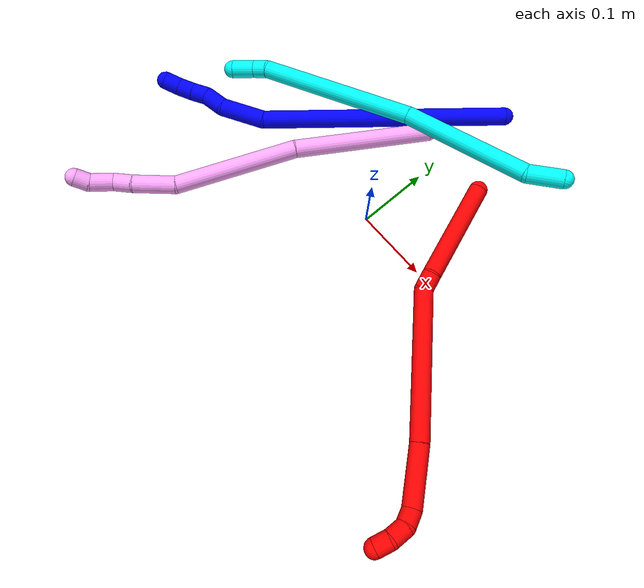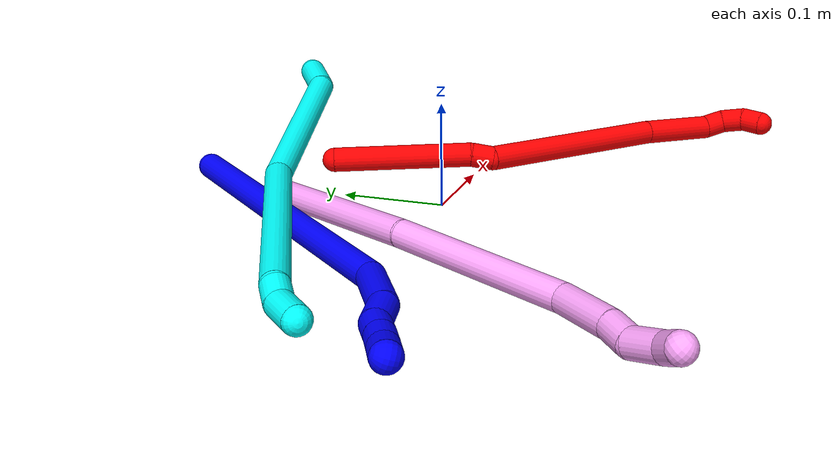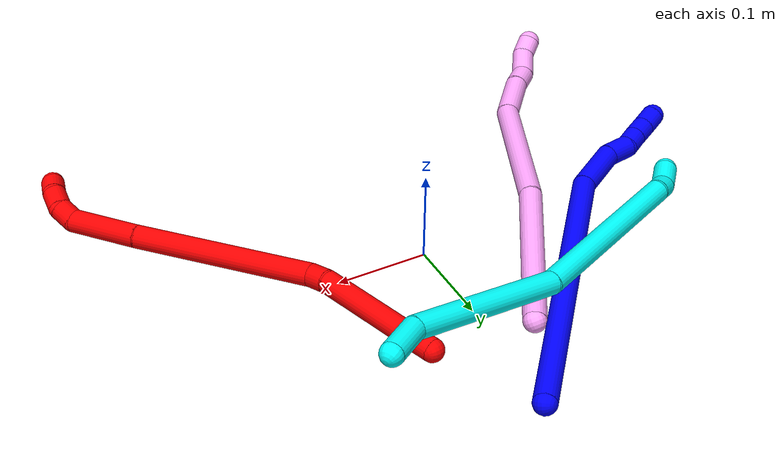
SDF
<sdf version="1.7">
 <world name="default">
  <model name="1">
   <static>0</static>
   <link name="1">
    <collision name="collision-cylinder-e_1_1_4">
     <pose>-0.141002 -0.074557 -0.063639 2.27736 -0.963302 -1.6957</pose>
     <geometry><cylinder><radius>0.0125</radius><length>0.343454</length></cylinder></geometry>
     <surface>
      <friction><ode><mu>1.16</mu><mu2>1.16</mu2><slip1>0</slip1><slip2>0</slip2></ode></friction>
      <contact><ode><kp>1e+06</kp><kd>1</kd><max_vel>0</max_vel><min_depth>0.001</min_depth></ode></contact>
     </surface>
    </collision>
    <visual name="visual-cylinder-e_1_1_4">
     <pose>-0.141002 -0.074557 -0.063639 2.27736 -0.963302 -1.6957</pose>
     <geometry><cylinder><radius>0.0125</radius><length>0.343454</length></cylinder></geometry>
     <material><ambient>0 0 1 1</ambient></material>
    </visual>
    <collision name="collision-cylinder-e_2_4_5">
     <pose>-0.310471 -0.160739 -0.128924 1.71139 -1.17959 -1.31317</pose>
     <geometry><cylinder><radius>0.0125</radius><length>0.061588</length></cylinder></geometry>
     <surface>
      <friction><ode><mu>1.16</mu><mu2>1.16</mu2><slip1>0</slip1><slip2>0</slip2></ode></friction>
      <contact><ode><kp>1e+06</kp><kd>1</kd><max_vel>0</max_vel><min_depth>0.001</min_depth></ode></contact>
     </surface>
    </collision>
    <visual name="visual-cylinder-e_2_4_5">
     <pose>-0.310471 -0.160739 -0.128924 1.71139 -1.17959 -1.31317</pose>
     <geometry><cylinder><radius>0.0125</radius><length>0.061588</length></cylinder></geometry>
     <material><ambient>0 0 1 1</ambient></material>
    </visual>
    <collision name="collision-cylinder-e_3_5_6">
     <pose>-0.353139 -0.175357 -0.126613 0.647427 -1.23471 -0.467666</pose>
     <geometry><cylinder><radius>0.0125</radius><length>0.030085</length></cylinder></geometry>
     <surface>
      <friction><ode><mu>1.16</mu><mu2>1.16</mu2><slip1>0</slip1><slip2>0</slip2></ode></friction>
      <contact><ode><kp>1e+06</kp><kd>1</kd><max_vel>0</max_vel><min_depth>0.001</min_depth></ode></contact>
     </surface>
    </collision>
    <visual name="visual-cylinder-e_3_5_6">
     <pose>-0.353139 -0.175357 -0.126613 0.647427 -1.23471 -0.467666</pose>
     <geometry><cylinder><radius>0.0125</radius><length>0.030085</length></cylinder></geometry>
     <material><ambient>0 0 1 1</ambient></material>
    </visual>
    <collision name="collision-cylinder-e_4_6_7">
     <pose>-0.377139 -0.18239 -0.123275 1.72293 -1.17558 -1.32026</pose>
     <geometry><cylinder><radius>0.0125</radius><length>0.021235</length></cylinder></geometry>
     <surface>
      <friction><ode><mu>1.16</mu><mu2>1.16</mu2><slip1>0</slip1><slip2>0</slip2></ode></friction>
      <contact><ode><kp>1e+06</kp><kd>1</kd><max_vel>0</max_vel><min_depth>0.001</min_depth></ode></contact>
     </surface>
    </collision>
    <visual name="visual-cylinder-e_4_6_7">
     <pose>-0.377139 -0.18239 -0.123275 1.72293 -1.17558 -1.32026</pose>
     <geometry><cylinder><radius>0.0125</radius><length>0.021235</length></cylinder></geometry>
     <material><ambient>0 0 1 1</ambient></material>
    </visual>
    <collision name="collision-cylinder-e_5_7_8">
     <pose>-0.396809 -0.190588 -0.123901 1.57237 -1.17216 -1.17362</pose>
     <geometry><cylinder><radius>0.0125</radius><length>0.02142</length></cylinder></geometry>
     <surface>
      <friction><ode><mu>1.16</mu><mu2>1.16</mu2><slip1>0</slip1><slip2>0</slip2></ode></friction>
      <contact><ode><kp>1e+06</kp><kd>1</kd><max_vel>0</max_vel><min_depth>0.001</min_depth></ode></contact>
     </surface>
    </collision>
    <visual name="visual-cylinder-e_5_7_8">
     <pose>-0.396809 -0.190588 -0.123901 1.57237 -1.17216 -1.17362</pose>
     <geometry><cylinder><radius>0.0125</radius><length>0.02142</length></cylinder></geometry>
     <material><ambient>0 0 1 1</ambient></material>
    </visual>
    <collision name="collision-cylinder-e_6_8_2">
     <pose>-0.416506 -0.199879 -0.123212 1.43602 -1.08563 -0.970006</pose>
     <geometry><cylinder><radius>0.0125</radius><length>0.022218</length></cylinder></geometry>
     <surface>
      <friction><ode><mu>1.16</mu><mu2>1.16</mu2><slip1>0</slip1><slip2>0</slip2></ode></friction>
      <contact><ode><kp>1e+06</kp><kd>1</kd><max_vel>0</max_vel><min_depth>0.001</min_depth></ode></contact>
     </surface>
    </collision>
    <visual name="visual-cylinder-e_6_8_2">
     <pose>-0.416506 -0.199879 -0.123212 1.43602 -1.08563 -0.970006</pose>
     <geometry><cylinder><radius>0.0125</radius><length>0.022218</length></cylinder></geometry>
     <material><ambient>0 0 1 1</ambient></material>
    </visual>
    <collision name="collision-sphere-2">
     <pose>-0.426333 -0.205013 -0.122515 0 -0 0</pose>
     <geometry><sphere><radius>0.0125</radius></sphere></geometry>
     <surface>
      <friction><ode><mu>1.16</mu><mu2>1.16</mu2><slip1>0</slip1><slip2>0</slip2></ode></friction>
      <contact><ode><kp>1e+06</kp><kd>1</kd><max_vel>0</max_vel><min_depth>0.001</min_depth></ode></contact>
     </surface>
    </collision>
    <visual name="visual-sphere-2">
     <pose>-0.426333 -0.205013 -0.122515 0 -0 0</pose>
     <geometry><sphere><radius>0.0125</radius></sphere></geometry>
     <material><ambient>0 0 1 1</ambient></material>
    </visual>
    <collision name="collision-sphere-4">
     <pose>-0.282003 -0.149113 -0.127279 0 -0 0</pose>
     <geometry><sphere><radius>0.0125</radius></sphere></geometry>
     <surface>
      <friction><ode><mu>1.16</mu><mu2>1.16</mu2><slip1>0</slip1><slip2>0</slip2></ode></friction>
      <contact><ode><kp>1e+06</kp><kd>1</kd><max_vel>0</max_vel><min_depth>0.001</min_depth></ode></contact>
     </surface>
    </collision>
    <visual name="visual-sphere-4">
     <pose>-0.282003 -0.149113 -0.127279 0 -0 0</pose>
     <geometry><sphere><radius>0.0125</radius></sphere></geometry>
     <material><ambient>0 0 1 1</ambient></material>
    </visual>
    <collision name="collision-sphere-1">
     <geometry><sphere><radius>0.0125</radius></sphere></geometry>
     <surface>
      <friction><ode><mu>1.16</mu><mu2>1.16</mu2><slip1>0</slip1><slip2>0</slip2></ode></friction>
      <contact><ode><kp>1e+06</kp><kd>1</kd><max_vel>0</max_vel><min_depth>0.001</min_depth></ode></contact>
     </surface>
    </collision>
    <visual name="visual-sphere-1">
     <geometry><sphere><radius>0.0125</radius></sphere></geometry>
     <material><ambient>0 0 1 1</ambient></material>
    </visual>
    <collision name="collision-sphere-8">
     <pose>-0.406679 -0.194745 -0.123908 0 -0 0</pose>
     <geometry><sphere><radius>0.0125</radius></sphere></geometry>
     <surface>
      <friction><ode><mu>1.16</mu><mu2>1.16</mu2><slip1>0</slip1><slip2>0</slip2></ode></friction>
      <contact><ode><kp>1e+06</kp><kd>1</kd><max_vel>0</max_vel><min_depth>0.001</min_depth></ode></contact>
     </surface>
    </collision>
    <visual name="visual-sphere-8">
     <pose>-0.406679 -0.194745 -0.123908 0 -0 0</pose>
     <geometry><sphere><radius>0.0125</radius></sphere></geometry>
     <material><ambient>0 0 1 1</ambient></material>
    </visual>
    <collision name="collision-sphere-5">
     <pose>-0.338938 -0.172365 -0.13057 0 -0 0</pose>
     <geometry><sphere><radius>0.0125</radius></sphere></geometry>
     <surface>
      <friction><ode><mu>1.16</mu><mu2>1.16</mu2><slip1>0</slip1><slip2>0</slip2></ode></friction>
      <contact><ode><kp>1e+06</kp><kd>1</kd><max_vel>0</max_vel><min_depth>0.001</min_depth></ode></contact>
     </surface>
    </collision>
    <visual name="visual-sphere-5">
     <pose>-0.338938 -0.172365 -0.13057 0 -0 0</pose>
     <geometry><sphere><radius>0.0125</radius></sphere></geometry>
     <material><ambient>0 0 1 1</ambient></material>
    </visual>
    <collision name="collision-sphere-6">
     <pose>-0.36734 -0.17835 -0.122656 0 -0 0</pose>
     <geometry><sphere><radius>0.0125</radius></sphere></geometry>
     <surface>
      <friction><ode><mu>1.16</mu><mu2>1.16</mu2><slip1>0</slip1><slip2>0</slip2></ode></friction>
      <contact><ode><kp>1e+06</kp><kd>1</kd><max_vel>0</max_vel><min_depth>0.001</min_depth></ode></contact>
     </surface>
    </collision>
    <visual name="visual-sphere-6">
     <pose>-0.36734 -0.17835 -0.122656 0 -0 0</pose>
     <geometry><sphere><radius>0.0125</radius></sphere></geometry>
     <material><ambient>0 0 1 1</ambient></material>
    </visual>
    <collision name="collision-sphere-7">
     <pose>-0.386939 -0.186431 -0.123895 0 -0 0</pose>
     <geometry><sphere><radius>0.0125</radius></sphere></geometry>
     <surface>
      <friction><ode><mu>1.16</mu><mu2>1.16</mu2><slip1>0</slip1><slip2>0</slip2></ode></friction>
      <contact><ode><kp>1e+06</kp><kd>1</kd><max_vel>0</max_vel><min_depth>0.001</min_depth></ode></contact>
     </surface>
    </collision>
    <visual name="visual-sphere-7">
     <pose>-0.386939 -0.186431 -0.123895 0 -0 0</pose>
     <geometry><sphere><radius>0.0125</radius></sphere></geometry>
     <material><ambient>0 0 1 1</ambient></material>
    </visual>
    <inertial>
     <pose>-0.20787 -0.106357 -0.083232 0 -0 0</pose>
     <mass>0.5</mass>
     <inertia>
      <ixx>-0.002201</ixx>
      <ixy>0</ixy>
      <ixz>0</ixz>
      <iyy>0.000454</iyy>
      <iyz>0</iyz>
      <izz>0.004284</izz>
     </inertia>
    </inertial>
   </link>
   <pose>0.011945 0.253267 0.01149 -1.1964 -0.315944 0.352663</pose>
  </model>
  <model name="2">
   <static>0</static>
   <link name="2">
    <collision name="collision-cylinder-e_1_1_4">
     <pose>0.041332 -0.05688 0.00931 1.40856 0.622124 0.533302</pose>
     <geometry><cylinder><radius>0.0125</radius><length>0.141849</length></cylinder></geometry>
     <surface>
      <friction><ode><mu>1.16</mu><mu2>1.16</mu2><slip1>0</slip1><slip2>0</slip2></ode></friction>
      <contact><ode><kp>1e+06</kp><kd>1</kd><max_vel>0</max_vel><min_depth>0.001</min_depth></ode></contact>
     </surface>
    </collision>
    <visual name="visual-cylinder-e_1_1_4">
     <pose>0.041332 -0.05688 0.00931 1.40856 0.622124 0.533302</pose>
     <geometry><cylinder><radius>0.0125</radius><length>0.141849</length></cylinder></geometry>
     <material><ambient>1 0 0 1</ambient></material>
    </visual>
    <collision name="collision-cylinder-e_2_4_5">
     <pose>0.091303 -0.121326 0.020123 1.3746 0.841856 0.704294</pose>
     <geometry><cylinder><radius>0.0125</radius><length>0.023164</length></cylinder></geometry>
     <surface>
      <friction><ode><mu>1.16</mu><mu2>1.16</mu2><slip1>0</slip1><slip2>0</slip2></ode></friction>
      <contact><ode><kp>1e+06</kp><kd>1</kd><max_vel>0</max_vel><min_depth>0.001</min_depth></ode></contact>
     </surface>
    </collision>
    <visual name="visual-cylinder-e_2_4_5">
     <pose>0.091303 -0.121326 0.020123 1.3746 0.841856 0.704294</pose>
     <geometry><cylinder><radius>0.0125</radius><length>0.023164</length></cylinder></geometry>
     <material><ambient>1 0 0 1</ambient></material>
    </visual>
    <collision name="collision-cylinder-e_3_5_6">
     <pose>0.150244 -0.193085 0.074277 0.883868 0.544736 0.262785</pose>
     <geometry><cylinder><radius>0.0125</radius><length>0.194146</length></cylinder></geometry>
     <surface>
      <friction><ode><mu>1.16</mu><mu2>1.16</mu2><slip1>0</slip1><slip2>0</slip2></ode></friction>
      <contact><ode><kp>1e+06</kp><kd>1</kd><max_vel>0</max_vel><min_depth>0.001</min_depth></ode></contact>
     </surface>
    </collision>
    <visual name="visual-cylinder-e_3_5_6">
     <pose>0.150244 -0.193085 0.074277 0.883868 0.544736 0.262785</pose>
     <geometry><cylinder><radius>0.0125</radius><length>0.194146</length></cylinder></geometry>
     <material><ambient>1 0 0 1</ambient></material>
    </visual>
    <collision name="collision-cylinder-e_4_6_7">
     <pose>0.222505 -0.282916 0.14468 0.965166 0.613512 0.328897</pose>
     <geometry><cylinder><radius>0.0125</radius><length>0.07628</length></cylinder></geometry>
     <surface>
      <friction><ode><mu>1.16</mu><mu2>1.16</mu2><slip1>0</slip1><slip2>0</slip2></ode></friction>
      <contact><ode><kp>1e+06</kp><kd>1</kd><max_vel>0</max_vel><min_depth>0.001</min_depth></ode></contact>
     </surface>
    </collision>
    <visual name="visual-cylinder-e_4_6_7">
     <pose>0.222505 -0.282916 0.14468 0.965166 0.613512 0.328897</pose>
     <geometry><cylinder><radius>0.0125</radius><length>0.07628</length></cylinder></geometry>
     <material><ambient>1 0 0 1</ambient></material>
    </visual>
    <collision name="collision-cylinder-e_5_7_8">
     <pose>0.248017 -0.318354 0.164455 1.36734 0.341219 0.278913</pose>
     <geometry><cylinder><radius>0.0125</radius><length>0.021236</length></cylinder></geometry>
     <surface>
      <friction><ode><mu>1.16</mu><mu2>1.16</mu2><slip1>0</slip1><slip2>0</slip2></ode></friction>
      <contact><ode><kp>1e+06</kp><kd>1</kd><max_vel>0</max_vel><min_depth>0.001</min_depth></ode></contact>
     </surface>
    </collision>
    <visual name="visual-cylinder-e_5_7_8">
     <pose>0.248017 -0.318354 0.164455 1.36734 0.341219 0.278913</pose>
     <geometry><cylinder><radius>0.0125</radius><length>0.021236</length></cylinder></geometry>
     <material><ambient>1 0 0 1</ambient></material>
    </visual>
    <collision name="collision-cylinder-e_6_8_9">
     <pose>0.256371 -0.338165 0.163558 1.85441 0.431404 0.568374</pose>
     <geometry><cylinder><radius>0.0125</radius><length>0.02296</length></cylinder></geometry>
     <surface>
      <friction><ode><mu>1.16</mu><mu2>1.16</mu2><slip1>0</slip1><slip2>0</slip2></ode></friction>
      <contact><ode><kp>1e+06</kp><kd>1</kd><max_vel>0</max_vel><min_depth>0.001</min_depth></ode></contact>
     </surface>
    </collision>
    <visual name="visual-cylinder-e_6_8_9">
     <pose>0.256371 -0.338165 0.163558 1.85441 0.431404 0.568374</pose>
     <geometry><cylinder><radius>0.0125</radius><length>0.02296</length></cylinder></geometry>
     <material><ambient>1 0 0 1</ambient></material>
    </visual>
    <collision name="collision-cylinder-e_7_9_2">
     <pose>0.267262 -0.354966 0.156114 2.15876 0.64114 1.11051</pose>
     <geometry><cylinder><radius>0.0125</radius><length>0.020366</length></cylinder></geometry>
     <surface>
      <friction><ode><mu>1.16</mu><mu2>1.16</mu2><slip1>0</slip1><slip2>0</slip2></ode></friction>
      <contact><ode><kp>1e+06</kp><kd>1</kd><max_vel>0</max_vel><min_depth>0.001</min_depth></ode></contact>
     </surface>
    </collision>
    <visual name="visual-cylinder-e_7_9_2">
     <pose>0.267262 -0.354966 0.156114 2.15876 0.64114 1.11051</pose>
     <geometry><cylinder><radius>0.0125</radius><length>0.020366</length></cylinder></geometry>
     <material><ambient>1 0 0 1</ambient></material>
    </visual>
    <collision name="collision-sphere-2">
     <pose>0.273352 -0.361757 0.151587 0 -0 0</pose>
     <geometry><sphere><radius>0.0125</radius></sphere></geometry>
     <surface>
      <friction><ode><mu>1.16</mu><mu2>1.16</mu2><slip1>0</slip1><slip2>0</slip2></ode></friction>
      <contact><ode><kp>1e+06</kp><kd>1</kd><max_vel>0</max_vel><min_depth>0.001</min_depth></ode></contact>
     </surface>
    </collision>
    <visual name="visual-sphere-2">
     <pose>0.273352 -0.361757 0.151587 0 -0 0</pose>
     <geometry><sphere><radius>0.0125</radius></sphere></geometry>
     <material><ambient>1 0 0 1</ambient></material>
    </visual>
    <collision name="collision-sphere-9">
     <pose>0.261171 -0.348176 0.16064 0 -0 0</pose>
     <geometry><sphere><radius>0.0125</radius></sphere></geometry>
     <surface>
      <friction><ode><mu>1.16</mu><mu2>1.16</mu2><slip1>0</slip1><slip2>0</slip2></ode></friction>
      <contact><ode><kp>1e+06</kp><kd>1</kd><max_vel>0</max_vel><min_depth>0.001</min_depth></ode></contact>
     </surface>
    </collision>
    <visual name="visual-sphere-9">
     <pose>0.261171 -0.348176 0.16064 0 -0 0</pose>
     <geometry><sphere><radius>0.0125</radius></sphere></geometry>
     <material><ambient>1 0 0 1</ambient></material>
    </visual>
    <collision name="collision-sphere-4">
     <pose>0.082665 -0.113759 0.018619 0 -0 0</pose>
     <geometry><sphere><radius>0.0125</radius></sphere></geometry>
     <surface>
      <friction><ode><mu>1.16</mu><mu2>1.16</mu2><slip1>0</slip1><slip2>0</slip2></ode></friction>
      <contact><ode><kp>1e+06</kp><kd>1</kd><max_vel>0</max_vel><min_depth>0.001</min_depth></ode></contact>
     </surface>
    </collision>
    <visual name="visual-sphere-4">
     <pose>0.082665 -0.113759 0.018619 0 -0 0</pose>
     <geometry><sphere><radius>0.0125</radius></sphere></geometry>
     <material><ambient>1 0 0 1</ambient></material>
    </visual>
    <collision name="collision-sphere-1">
     <geometry><sphere><radius>0.0125</radius></sphere></geometry>
     <surface>
      <friction><ode><mu>1.16</mu><mu2>1.16</mu2><slip1>0</slip1><slip2>0</slip2></ode></friction>
      <contact><ode><kp>1e+06</kp><kd>1</kd><max_vel>0</max_vel><min_depth>0.001</min_depth></ode></contact>
     </surface>
    </collision>
    <visual name="visual-sphere-1">
     <geometry><sphere><radius>0.0125</radius></sphere></geometry>
     <material><ambient>1 0 0 1</ambient></material>
    </visual>
    <collision name="collision-sphere-8">
     <pose>0.25157 -0.328153 0.166476 0 -0 0</pose>
     <geometry><sphere><radius>0.0125</radius></sphere></geometry>
     <surface>
      <friction><ode><mu>1.16</mu><mu2>1.16</mu2><slip1>0</slip1><slip2>0</slip2></ode></friction>
      <contact><ode><kp>1e+06</kp><kd>1</kd><max_vel>0</max_vel><min_depth>0.001</min_depth></ode></contact>
     </surface>
    </collision>
    <visual name="visual-sphere-8">
     <pose>0.25157 -0.328153 0.166476 0 -0 0</pose>
     <geometry><sphere><radius>0.0125</radius></sphere></geometry>
     <material><ambient>1 0 0 1</ambient></material>
    </visual>
    <collision name="collision-sphere-5">
     <pose>0.099942 -0.128892 0.021627 0 -0 0</pose>
     <geometry><sphere><radius>0.0125</radius></sphere></geometry>
     <surface>
      <friction><ode><mu>1.16</mu><mu2>1.16</mu2><slip1>0</slip1><slip2>0</slip2></ode></friction>
      <contact><ode><kp>1e+06</kp><kd>1</kd><max_vel>0</max_vel><min_depth>0.001</min_depth></ode></contact>
     </surface>
    </collision>
    <visual name="visual-sphere-5">
     <pose>0.099942 -0.128892 0.021627 0 -0 0</pose>
     <geometry><sphere><radius>0.0125</radius></sphere></geometry>
     <material><ambient>1 0 0 1</ambient></material>
    </visual>
    <collision name="collision-sphere-6">
     <pose>0.200547 -0.257278 0.126928 0 -0 0</pose>
     <geometry><sphere><radius>0.0125</radius></sphere></geometry>
     <surface>
      <friction><ode><mu>1.16</mu><mu2>1.16</mu2><slip1>0</slip1><slip2>0</slip2></ode></friction>
      <contact><ode><kp>1e+06</kp><kd>1</kd><max_vel>0</max_vel><min_depth>0.001</min_depth></ode></contact>
     </surface>
    </collision>
    <visual name="visual-sphere-6">
     <pose>0.200547 -0.257278 0.126928 0 -0 0</pose>
     <geometry><sphere><radius>0.0125</radius></sphere></geometry>
     <material><ambient>1 0 0 1</ambient></material>
    </visual>
    <collision name="collision-sphere-7">
     <pose>0.244464 -0.308554 0.162433 0 -0 0</pose>
     <geometry><sphere><radius>0.0125</radius></sphere></geometry>
     <surface>
      <friction><ode><mu>1.16</mu><mu2>1.16</mu2><slip1>0</slip1><slip2>0</slip2></ode></friction>
      <contact><ode><kp>1e+06</kp><kd>1</kd><max_vel>0</max_vel><min_depth>0.001</min_depth></ode></contact>
     </surface>
    </collision>
    <visual name="visual-sphere-7">
     <pose>0.244464 -0.308554 0.162433 0 -0 0</pose>
     <geometry><sphere><radius>0.0125</radius></sphere></geometry>
     <material><ambient>1 0 0 1</ambient></material>
    </visual>
    <inertial>
     <pose>0.141432 -0.1834 0.075341 0 -0 0</pose>
     <mass>0.5</mass>
     <inertia><ixx>0.000989</ixx><ixy>0</ixy><ixz>0</ixz><iyy>0.0008</iyy><iyz>0</iyz><izz>0.000159</izz></inertia>
    </inertial>
   </link>
   <pose>0.069951 0.142103 0.011466 -1.49555 0.915783 -1.30288</pose>
  </model>
  <model name="3">
   <static>0</static>
   <link name="3">
    <collision name="collision-cylinder-e_1_1_4">
     <pose>-0.007433 0.003183 -0.021824 -2.99677 -0.325066 2.30865</pose>
     <geometry><cylinder><radius>0.0125</radius><length>0.046548</length></cylinder></geometry>
     <surface>
      <friction><ode><mu>1.16</mu><mu2>1.16</mu2><slip1>0</slip1><slip2>0</slip2></ode></friction>
      <contact><ode><kp>1e+06</kp><kd>1</kd><max_vel>0</max_vel><min_depth>0.001</min_depth></ode></contact>
     </surface>
    </collision>
    <visual name="visual-cylinder-e_1_1_4">
     <pose>-0.007433 0.003183 -0.021824 -2.99677 -0.325066 2.30865</pose>
     <geometry><cylinder><radius>0.0125</radius><length>0.046548</length></cylinder></geometry>
     <material><ambient>0.003922 1 0.996078 1</ambient></material>
    </visual>
    <collision name="collision-cylinder-e_2_4_5">
     <pose>-0.057886 -0.016118 -0.120758 2.85788 -0.491718 -2.10676</pose>
     <geometry><cylinder><radius>0.0125</radius><length>0.182231</length></cylinder></geometry>
     <surface>
      <friction><ode><mu>1.16</mu><mu2>1.16</mu2><slip1>0</slip1><slip2>0</slip2></ode></friction>
      <contact><ode><kp>1e+06</kp><kd>1</kd><max_vel>0</max_vel><min_depth>0.001</min_depth></ode></contact>
     </surface>
    </collision>
    <visual name="visual-cylinder-e_2_4_5">
     <pose>-0.057886 -0.016118 -0.120758 2.85788 -0.491718 -2.10676</pose>
     <geometry><cylinder><radius>0.0125</radius><length>0.182231</length></cylinder></geometry>
     <material><ambient>0.003922 1 0.996078 1</ambient></material>
    </visual>
    <collision name="collision-cylinder-e_3_5_6">
     <pose>-0.134194 -0.043418 -0.301417 3.09512 -0.310725 -2.84695</pose>
     <geometry><cylinder><radius>0.0125</radius><length>0.21775</length></cylinder></geometry>
     <surface>
      <friction><ode><mu>1.16</mu><mu2>1.16</mu2><slip1>0</slip1><slip2>0</slip2></ode></friction>
      <contact><ode><kp>1e+06</kp><kd>1</kd><max_vel>0</max_vel><min_depth>0.001</min_depth></ode></contact>
     </surface>
    </collision>
    <visual name="visual-cylinder-e_3_5_6">
     <pose>-0.134194 -0.043418 -0.301417 3.09512 -0.310725 -2.84695</pose>
     <geometry><cylinder><radius>0.0125</radius><length>0.21775</length></cylinder></geometry>
     <material><ambient>0.003922 1 0.996078 1</ambient></material>
    </visual>
    <collision name="collision-cylinder-e_4_6_7">
     <pose>-0.172712 -0.046569 -0.414122 -2.96175 -0.512023 2.47813</pose>
     <geometry><cylinder><radius>0.0125</radius><length>0.021348</length></cylinder></geometry>
     <surface>
      <friction><ode><mu>1.16</mu><mu2>1.16</mu2><slip1>0</slip1><slip2>0</slip2></ode></friction>
      <contact><ode><kp>1e+06</kp><kd>1</kd><max_vel>0</max_vel><min_depth>0.001</min_depth></ode></contact>
     </surface>
    </collision>
    <visual name="visual-cylinder-e_4_6_7">
     <pose>-0.172712 -0.046569 -0.414122 -2.96175 -0.512023 2.47813</pose>
     <geometry><cylinder><radius>0.0125</radius><length>0.021348</length></cylinder></geometry>
     <material><ambient>0.003922 1 0.996078 1</ambient></material>
    </visual>
    <collision name="collision-cylinder-e_5_7_2">
     <pose>-0.180497 -0.039467 -0.438172 -2.79157 -0.159778 0.850306</pose>
     <geometry><cylinder><radius>0.0125</radius><length>0.032122</length></cylinder></geometry>
     <surface>
      <friction><ode><mu>1.16</mu><mu2>1.16</mu2><slip1>0</slip1><slip2>0</slip2></ode></friction>
      <contact><ode><kp>1e+06</kp><kd>1</kd><max_vel>0</max_vel><min_depth>0.001</min_depth></ode></contact>
     </surface>
    </collision>
    <visual name="visual-cylinder-e_5_7_2">
     <pose>-0.180497 -0.039467 -0.438172 -2.79157 -0.159778 0.850306</pose>
     <geometry><cylinder><radius>0.0125</radius><length>0.032122</length></cylinder></geometry>
     <material><ambient>0.003922 1 0.996078 1</ambient></material>
    </visual>
    <collision name="collision-sphere-2">
     <pose>-0.183052 -0.03403 -0.453067 0 -0 0</pose>
     <geometry><sphere><radius>0.0125</radius></sphere></geometry>
     <surface>
      <friction><ode><mu>1.16</mu><mu2>1.16</mu2><slip1>0</slip1><slip2>0</slip2></ode></friction>
      <contact><ode><kp>1e+06</kp><kd>1</kd><max_vel>0</max_vel><min_depth>0.001</min_depth></ode></contact>
     </surface>
    </collision>
    <visual name="visual-sphere-2">
     <pose>-0.183052 -0.03403 -0.453067 0 -0 0</pose>
     <geometry><sphere><radius>0.0125</radius></sphere></geometry>
     <material><ambient>0.003922 1 0.996078 1</ambient></material>
    </visual>
    <collision name="collision-sphere-7">
     <pose>-0.177941 -0.044905 -0.423277 0 -0 0</pose>
     <geometry><sphere><radius>0.0125</radius></sphere></geometry>
     <surface>
      <friction><ode><mu>1.16</mu><mu2>1.16</mu2><slip1>0</slip1><slip2>0</slip2></ode></friction>
      <contact><ode><kp>1e+06</kp><kd>1</kd><max_vel>0</max_vel><min_depth>0.001</min_depth></ode></contact>
     </surface>
    </collision>
    <visual name="visual-sphere-7">
     <pose>-0.177941 -0.044905 -0.423277 0 -0 0</pose>
     <geometry><sphere><radius>0.0125</radius></sphere></geometry>
     <material><ambient>0.003922 1 0.996078 1</ambient></material>
    </visual>
    <collision name="collision-sphere-6">
     <pose>-0.167482 -0.048234 -0.404967 0 -0 0</pose>
     <geometry><sphere><radius>0.0125</radius></sphere></geometry>
     <surface>
      <friction><ode><mu>1.16</mu><mu2>1.16</mu2><slip1>0</slip1><slip2>0</slip2></ode></friction>
      <contact><ode><kp>1e+06</kp><kd>1</kd><max_vel>0</max_vel><min_depth>0.001</min_depth></ode></contact>
     </surface>
    </collision>
    <visual name="visual-sphere-6">
     <pose>-0.167482 -0.048234 -0.404967 0 -0 0</pose>
     <geometry><sphere><radius>0.0125</radius></sphere></geometry>
     <material><ambient>0.003922 1 0.996078 1</ambient></material>
    </visual>
    <collision name="collision-sphere-5">
     <pose>-0.100905 -0.038602 -0.197868 0 -0 0</pose>
     <geometry><sphere><radius>0.0125</radius></sphere></geometry>
     <surface>
      <friction><ode><mu>1.16</mu><mu2>1.16</mu2><slip1>0</slip1><slip2>0</slip2></ode></friction>
      <contact><ode><kp>1e+06</kp><kd>1</kd><max_vel>0</max_vel><min_depth>0.001</min_depth></ode></contact>
     </surface>
    </collision>
    <visual name="visual-sphere-5">
     <pose>-0.100905 -0.038602 -0.197868 0 -0 0</pose>
     <geometry><sphere><radius>0.0125</radius></sphere></geometry>
     <material><ambient>0.003922 1 0.996078 1</ambient></material>
    </visual>
    <collision name="collision-sphere-1">
     <geometry><sphere><radius>0.0125</radius></sphere></geometry>
     <surface>
      <friction><ode><mu>1.16</mu><mu2>1.16</mu2><slip1>0</slip1><slip2>0</slip2></ode></friction>
      <contact><ode><kp>1e+06</kp><kd>1</kd><max_vel>0</max_vel><min_depth>0.001</min_depth></ode></contact>
     </surface>
    </collision>
    <visual name="visual-sphere-1">
     <geometry><sphere><radius>0.0125</radius></sphere></geometry>
     <material><ambient>0.003922 1 0.996078 1</ambient></material>
    </visual>
    <collision name="collision-sphere-4">
     <pose>-0.014866 0.006366 -0.043649 0 -0 0</pose>
     <geometry><sphere><radius>0.0125</radius></sphere></geometry>
     <surface>
      <friction><ode><mu>1.16</mu><mu2>1.16</mu2><slip1>0</slip1><slip2>0</slip2></ode></friction>
      <contact><ode><kp>1e+06</kp><kd>1</kd><max_vel>0</max_vel><min_depth>0.001</min_depth></ode></contact>
     </surface>
    </collision>
    <visual name="visual-sphere-4">
     <pose>-0.014866 0.006366 -0.043649 0 -0 0</pose>
     <geometry><sphere><radius>0.0125</radius></sphere></geometry>
     <material><ambient>0.003922 1 0.996078 1</ambient></material>
    </visual>
    <inertial>
     <pose>-0.099201 -0.02901 -0.223142 0 -0 0</pose>
     <mass>0.5</mass>
     <inertia>
      <ixx>-0.001658</ixx>
      <ixy>0</ixy>
      <ixz>0</ixz>
      <iyy>0.00053</iyy>
      <iyz>0</iyz>
      <izz>0.000638</izz>
     </inertia>
    </inertial>
   </link>
   <pose>0.144261 0.197906 0.085389 -2.36749 -1.27249 -0.244764</pose>
  </model>
  <model name="4">
   <static>0</static>
   <link name="4">
    <collision name="collision-cylinder-e_1_1_4">
     <pose>-0.02478 -0.073297 0.055348 0.924022 -0.263522 -0.131796</pose>
     <geometry><cylinder><radius>0.0125</radius><length>0.190262</length></cylinder></geometry>
     <surface>
      <friction><ode><mu>1.16</mu><mu2>1.16</mu2><slip1>0</slip1><slip2>0</slip2></ode></friction>
      <contact><ode><kp>1e+06</kp><kd>1</kd><max_vel>0</max_vel><min_depth>0.001</min_depth></ode></contact>
     </surface>
    </collision>
    <visual name="visual-cylinder-e_1_1_4">
     <pose>-0.02478 -0.073297 0.055348 0.924022 -0.263522 -0.131796</pose>
     <geometry><cylinder><radius>0.0125</radius><length>0.190262</length></cylinder></geometry>
     <material><ambient>1 0.65098 0.996078 1</ambient></material>
    </visual>
    <collision name="collision-cylinder-e_2_4_5">
     <pose>-0.058905 -0.217494 0.15712 0.991083 -0.109832 -0.059409</pose>
     <geometry><cylinder><radius>0.0125</radius><length>0.170521</length></cylinder></geometry>
     <surface>
      <friction><ode><mu>1.16</mu><mu2>1.16</mu2><slip1>0</slip1><slip2>0</slip2></ode></friction>
      <contact><ode><kp>1e+06</kp><kd>1</kd><max_vel>0</max_vel><min_depth>0.001</min_depth></ode></contact>
     </surface>
    </collision>
    <visual name="visual-cylinder-e_2_4_5">
     <pose>-0.058905 -0.217494 0.15712 0.991083 -0.109832 -0.059409</pose>
     <geometry><cylinder><radius>0.0125</radius><length>0.170521</length></cylinder></geometry>
     <material><ambient>1 0.65098 0.996078 1</ambient></material>
    </visual>
    <collision name="collision-cylinder-e_3_5_6">
     <pose>-0.080591 -0.310912 0.217741 1.0082 -0.4341 -0.242111</pose>
     <geometry><cylinder><radius>0.0125</radius><length>0.058681</length></cylinder></geometry>
     <surface>
      <friction><ode><mu>1.16</mu><mu2>1.16</mu2><slip1>0</slip1><slip2>0</slip2></ode></friction>
      <contact><ode><kp>1e+06</kp><kd>1</kd><max_vel>0</max_vel><min_depth>0.001</min_depth></ode></contact>
     </surface>
    </collision>
    <visual name="visual-cylinder-e_3_5_6">
     <pose>-0.080591 -0.310912 0.217741 1.0082 -0.4341 -0.242111</pose>
     <geometry><cylinder><radius>0.0125</radius><length>0.058681</length></cylinder></geometry>
     <material><ambient>1 0.65098 0.996078 1</ambient></material>
    </visual>
    <collision name="collision-cylinder-e_4_6_7">
     <pose>-0.099641 -0.344294 0.236633 1.16301 -0.515671 -0.343265</pose>
     <geometry><cylinder><radius>0.0125</radius><length>0.027211</length></cylinder></geometry>
     <surface>
      <friction><ode><mu>1.16</mu><mu2>1.16</mu2><slip1>0</slip1><slip2>0</slip2></ode></friction>
      <contact><ode><kp>1e+06</kp><kd>1</kd><max_vel>0</max_vel><min_depth>0.001</min_depth></ode></contact>
     </surface>
    </collision>
    <visual name="visual-cylinder-e_4_6_7">
     <pose>-0.099641 -0.344294 0.236633 1.16301 -0.515671 -0.343265</pose>
     <geometry><cylinder><radius>0.0125</radius><length>0.027211</length></cylinder></geometry>
     <material><ambient>1 0.65098 0.996078 1</ambient></material>
    </visual>
    <collision name="collision-cylinder-e_5_7_8">
     <pose>-0.111784 -0.365552 0.252808 0.735684 -0.337476 -0.131118</pose>
     <geometry><cylinder><radius>0.0125</radius><length>0.032824</length></cylinder></geometry>
     <surface>
      <friction><ode><mu>1.16</mu><mu2>1.16</mu2><slip1>0</slip1><slip2>0</slip2></ode></friction>
      <contact><ode><kp>1e+06</kp><kd>1</kd><max_vel>0</max_vel><min_depth>0.001</min_depth></ode></contact>
     </surface>
    </collision>
    <visual name="visual-cylinder-e_5_7_8">
     <pose>-0.111784 -0.365552 0.252808 0.735684 -0.337476 -0.131118</pose>
     <geometry><cylinder><radius>0.0125</radius><length>0.032824</length></cylinder></geometry>
     <material><ambient>1 0.65098 0.996078 1</ambient></material>
    </visual>
    <collision name="collision-cylinder-e_6_8_2">
     <pose>-0.123748 -0.380286 0.270891 0.581664 -0.690673 -0.214535</pose>
     <geometry><cylinder><radius>0.0125</radius><length>0.020501</length></cylinder></geometry>
     <surface>
      <friction><ode><mu>1.16</mu><mu2>1.16</mu2><slip1>0</slip1><slip2>0</slip2></ode></friction>
      <contact><ode><kp>1e+06</kp><kd>1</kd><max_vel>0</max_vel><min_depth>0.001</min_depth></ode></contact>
     </surface>
    </collision>
    <visual name="visual-cylinder-e_6_8_2">
     <pose>-0.123748 -0.380286 0.270891 0.581664 -0.690673 -0.214535</pose>
     <geometry><cylinder><radius>0.0125</radius><length>0.020501</length></cylinder></geometry>
     <material><ambient>1 0.65098 0.996078 1</ambient></material>
    </visual>
    <collision name="collision-sphere-2">
     <pose>-0.130278 -0.384627 0.277493 0 -0 0</pose>
     <geometry><sphere><radius>0.0125</radius></sphere></geometry>
     <surface>
      <friction><ode><mu>1.16</mu><mu2>1.16</mu2><slip1>0</slip1><slip2>0</slip2></ode></friction>
      <contact><ode><kp>1e+06</kp><kd>1</kd><max_vel>0</max_vel><min_depth>0.001</min_depth></ode></contact>
     </surface>
    </collision>
    <visual name="visual-sphere-2">
     <pose>-0.130278 -0.384627 0.277493 0 -0 0</pose>
     <geometry><sphere><radius>0.0125</radius></sphere></geometry>
     <material><ambient>1 0.65098 0.996078 1</ambient></material>
    </visual>
    <collision name="collision-sphere-4">
     <pose>-0.04956 -0.146593 0.110697 0 -0 0</pose>
     <geometry><sphere><radius>0.0125</radius></sphere></geometry>
     <surface>
      <friction><ode><mu>1.16</mu><mu2>1.16</mu2><slip1>0</slip1><slip2>0</slip2></ode></friction>
      <contact><ode><kp>1e+06</kp><kd>1</kd><max_vel>0</max_vel><min_depth>0.001</min_depth></ode></contact>
     </surface>
    </collision>
    <visual name="visual-sphere-4">
     <pose>-0.04956 -0.146593 0.110697 0 -0 0</pose>
     <geometry><sphere><radius>0.0125</radius></sphere></geometry>
     <material><ambient>1 0.65098 0.996078 1</ambient></material>
    </visual>
    <collision name="collision-sphere-1">
     <geometry><sphere><radius>0.0125</radius></sphere></geometry>
     <surface>
      <friction><ode><mu>1.16</mu><mu2>1.16</mu2><slip1>0</slip1><slip2>0</slip2></ode></friction>
      <contact><ode><kp>1e+06</kp><kd>1</kd><max_vel>0</max_vel><min_depth>0.001</min_depth></ode></contact>
     </surface>
    </collision>
    <visual name="visual-sphere-1">
     <geometry><sphere><radius>0.0125</radius></sphere></geometry>
     <material><ambient>1 0.65098 0.996078 1</ambient></material>
    </visual>
    <collision name="collision-sphere-8">
     <pose>-0.117218 -0.375945 0.264289 0 -0 0</pose>
     <geometry><sphere><radius>0.0125</radius></sphere></geometry>
     <surface>
      <friction><ode><mu>1.16</mu><mu2>1.16</mu2><slip1>0</slip1><slip2>0</slip2></ode></friction>
      <contact><ode><kp>1e+06</kp><kd>1</kd><max_vel>0</max_vel><min_depth>0.001</min_depth></ode></contact>
     </surface>
    </collision>
    <visual name="visual-sphere-8">
     <pose>-0.117218 -0.375945 0.264289 0 -0 0</pose>
     <geometry><sphere><radius>0.0125</radius></sphere></geometry>
     <material><ambient>1 0.65098 0.996078 1</ambient></material>
    </visual>
    <collision name="collision-sphere-5">
     <pose>-0.068251 -0.288395 0.203543 0 -0 0</pose>
     <geometry><sphere><radius>0.0125</radius></sphere></geometry>
     <surface>
      <friction><ode><mu>1.16</mu><mu2>1.16</mu2><slip1>0</slip1><slip2>0</slip2></ode></friction>
      <contact><ode><kp>1e+06</kp><kd>1</kd><max_vel>0</max_vel><min_depth>0.001</min_depth></ode></contact>
     </surface>
    </collision>
    <visual name="visual-sphere-5">
     <pose>-0.068251 -0.288395 0.203543 0 -0 0</pose>
     <geometry><sphere><radius>0.0125</radius></sphere></geometry>
     <material><ambient>1 0.65098 0.996078 1</ambient></material>
    </visual>
    <collision name="collision-sphere-6">
     <pose>-0.092932 -0.333428 0.231939 0 -0 0</pose>
     <geometry><sphere><radius>0.0125</radius></sphere></geometry>
     <surface>
      <friction><ode><mu>1.16</mu><mu2>1.16</mu2><slip1>0</slip1><slip2>0</slip2></ode></friction>
      <contact><ode><kp>1e+06</kp><kd>1</kd><max_vel>0</max_vel><min_depth>0.001</min_depth></ode></contact>
     </surface>
    </collision>
    <visual name="visual-sphere-6">
     <pose>-0.092932 -0.333428 0.231939 0 -0 0</pose>
     <geometry><sphere><radius>0.0125</radius></sphere></geometry>
     <material><ambient>1 0.65098 0.996078 1</ambient></material>
    </visual>
    <collision name="collision-sphere-7">
     <pose>-0.10635 -0.35516 0.241327 0 -0 0</pose>
     <geometry><sphere><radius>0.0125</radius></sphere></geometry>
     <surface>
      <friction><ode><mu>1.16</mu><mu2>1.16</mu2><slip1>0</slip1><slip2>0</slip2></ode></friction>
      <contact><ode><kp>1e+06</kp><kd>1</kd><max_vel>0</max_vel><min_depth>0.001</min_depth></ode></contact>
     </surface>
    </collision>
    <visual name="visual-sphere-7">
     <pose>-0.10635 -0.35516 0.241327 0 -0 0</pose>
     <geometry><sphere><radius>0.0125</radius></sphere></geometry>
     <material><ambient>1 0.65098 0.996078 1</ambient></material>
    </visual>
    <inertial>
     <pose>-0.056812 -0.196883 0.140782 0 -0 0</pose>
     <mass>0.5</mass>
     <inertia>
      <ixx>0.000883</ixx>
      <ixy>0</ixy>
      <ixz>0</ixz>
      <iyy>0.000478</iyy>
      <iyz>0</iyz>
      <izz>0.001048</izz>
     </inertia>
    </inertial>
   </link>
   <pose>-0.040122 0.152563 0.012436 0.674508 0.299853 -0.272953</pose>
  </model>
 </world>
</sdf>
